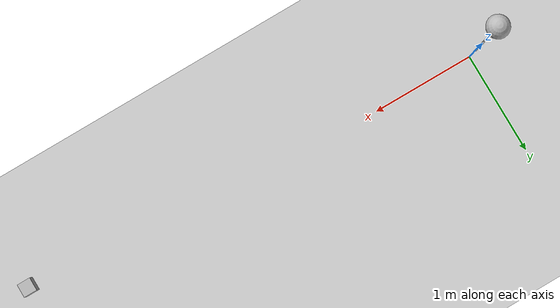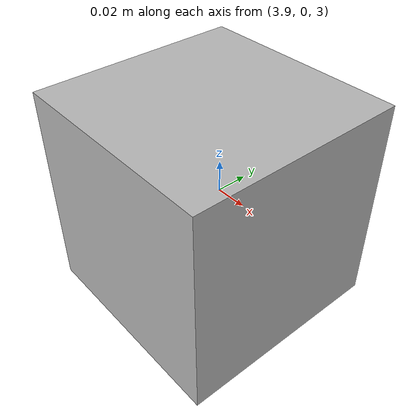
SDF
<?xml version="1.0" ?>
<sdf version="1.6">
  <world name="sensors">
    <physics name="1ms" type="ignored">
      <max_step_size>0.001</max_step_size>
      <real_time_factor>1.0</real_time_factor>
    </physics>
    <plugin
      filename="gz-sim-physics-system"
      name="gz::sim::systems::Physics">
    </plugin>
    <plugin
      filename="gz-sim-air-pressure-system"
      name="gz::sim::systems::AirPressure">
    </plugin>
    <plugin
      filename="gz-sim-altimeter-system"
      name="gz::sim::systems::Altimeter">
    </plugin>
    <plugin
      filename="gz-sim-imu-system"
      name="gz::sim::systems::Imu">
    </plugin>
    <plugin
      filename="gz-sim-uwb-system"
      name="gz::sim::systems::Uwb">
    </plugin>
    <plugin
      filename="gz-sim-magnetometer-system"
      name="gz::sim::systems::Magnetometer">
    </plugin>
    <plugin
      filename="gz-sim-forcetorque-system"
      name="gz::sim::systems::ForceTorque">
    </plugin>
    <plugin
      filename="gz-sim-user-commands-system"
      name="gz::sim::systems::UserCommands">
    </plugin>
    <plugin
      filename="gz-sim-scene-broadcaster-system"
      name="gz::sim::systems::SceneBroadcaster">
    </plugin>

    <light type="directional" name="sun">
      <cast_shadows>true</cast_shadows>
      <pose>0 0 10 0 0 0</pose>
      <diffuse>0.8 0.8 0.8 1</diffuse>
      <specular>0.2 0.2 0.2 1</specular>
      <attenuation>
        <range>1000</range>
        <constant>0.9</constant>
        <linear>0.01</linear>
        <quadratic>0.001</quadratic>
      </attenuation>
      <direction>-0.5 0.1 -0.9</direction>
    </light>

    <model name="ground_plane">
      <static>true</static>
      <link name="link">
        <collision name="collision">
          <geometry>
            <plane>
              <normal>0 0 1</normal>
              <size>100 100</size>
            </plane>
          </geometry>
        </collision>
        <visual name="visual">
          <geometry>
            <plane>
              <normal>0 0 1</normal>
              <size>100 100</size>
            </plane>
          </geometry>
          <material>
            <ambient>0.8 0.8 0.8 1</ambient>
            <diffuse>0.8 0.8 0.8 1</diffuse>
            <specular>0.8 0.8 0.8 1</specular>
          </material>
        </visual>
      </link>
    </model>

    <model name="sensors_box">
      <pose>4 0 3.0 0 0.0 3.14</pose>
      <link name="link">
        <pose>0.05 0.05 0.05 0 0 0</pose>
        <inertial>
          <mass>0.1</mass>
          <inertia>
            <ixx>0.000166667</ixx>
            <iyy>0.000166667</iyy>
            <izz>0.000166667</izz>
          </inertia>
        </inertial>
        <collision name="collision">
          <geometry>
            <box>
              <size>0.1 0.1 0.1</size>
            </box>
          </geometry>
        </collision>
        <visual name="visual">
          <geometry>
            <box>
              <size>0.1 0.1 0.1</size>
            </box>
          </geometry>
        </visual>
        <sensor name="altimeter" type="altimeter">
          <always_on>1</always_on>
          <update_rate>30</update_rate>
          <visualize>true</visualize>
          <topic>altimeter</topic>
          <enable_metrics>true</enable_metrics>
          <altimeter>
            <vertical_position>
              <noise type="gaussian">
                <mean>0.1</mean>
                <stddev>0.2</stddev>
              </noise>
            </vertical_position>
            <vertical_velocity>
              <noise type="gaussian">
                <mean>0.2</mean>
                <stddev>0.1</stddev>
              </noise>
            </vertical_velocity>
          </altimeter>
        </sensor>
        <sensor name="air_pressure" type="air_pressure">
          <always_on>1</always_on>
          <update_rate>30</update_rate>
          <visualize>true</visualize>
          <topic>air_pressure</topic>
          <enable_metrics>true</enable_metrics>
          <air_pressure>
            <reference_altitude>123</reference_altitude>
            <pressure>
              <noise type="gaussian">
                <mean>0.2</mean>
                <stddev>0.1</stddev>
              </noise>
            </pressure>
          </air_pressure>
        </sensor>
        <sensor name="air_speed" type="air_speed">
          <always_on>1</always_on>
          <update_rate>30</update_rate>
          <visualize>true</visualize>
          <topic>air_pressure</topic>
          <enable_metrics>true</enable_metrics>
          <air_speed>
            <pressure>
              <noise type="gaussian">
                <mean>0.2</mean>
                <stddev>0.1</stddev>
              </noise>
            </pressure>
          </air_speed>
        </sensor>
        <sensor name="imu" type="imu">
          <always_on>1</always_on>
          <update_rate>100</update_rate>
          <visualize>true</visualize>
          <topic>imu</topic>
          <enable_metrics>true</enable_metrics>
        </sensor>
        <sensor name="uwb" type="uwb">
          <always_on>1</always_on>
          <update_rate>100</update_rate>
          <visualize>true</visualize>
          <topic>uwb</topic>
          <enable_metrics>true</enable_metrics>
        </sensor>
        <sensor name="magnetometer" type="magnetometer">
          <always_on>1</always_on>
          <update_rate>100</update_rate>
          <visualize>true</visualize>
          <topic>magnetometer</topic>
          <enable_metrics>true</enable_metrics>
          <magnetometer>
            <x>
              <noise type="gaussian">
                <mean>0.0</mean>
                <stddev>0.1</stddev>
              </noise>
            </x>
            <y>
              <noise type="gaussian">
                <mean>0.0</mean>
                <stddev>0.1</stddev>
              </noise>
            </y>
            <z>
              <noise type="gaussian">
                <mean>0.0</mean>
                <stddev>0.1</stddev>
              </noise>
            </z>
          </magnetometer>
        </sensor>
      </link>
    </model>

    <model name="force_torque_demo">
      <link name="base_plate">
        <static>true</static>
      </link>

      <link name="link_1">
        <pose> 0 0 2.0 0 0 0</pose>
        <inertial>
          <inertia>
            <ixx>0.100000</ixx>
            <ixy>0.000000</ixy>
            <ixz>0.000000</ixz>
            <iyy>0.100000</iyy>
            <iyz>0.000000</iyz>
            <izz>0.100000</izz>
          </inertia>
          <mass>10.000000</mass>
        </inertial>
        <visual name="visual_sphere">
          <geometry>
            <sphere>
              <radius>0.100000</radius>
            </sphere>
          </geometry>
        </visual>
        <visual name="visual_cylinder">
          <pose>0 0 -0.75 0 0 0</pose>
          <geometry>
            <cylinder>
              <radius>0.0100000</radius>
              <length>1.5</length>
            </cylinder>
          </geometry>
        </visual>
        <collision name="collision_sphere">
          <geometry>
            <sphere>
              <radius>0.100000</radius>
            </sphere>
          </geometry>
        </collision>
      </link>
      <joint name="joint_00" type="fixed">
        <parent>world</parent>
        <child>base_plate</child>
      </joint>
      <joint name="joint_01" type="revolute">
        <parent>base_plate</parent>
        <child>link_1</child>
        <pose>0 0 -1.5 0 0 0</pose>
        <axis>
          <limit>
            <lower>-1.57079</lower>
            <upper>1.57079</upper>
          </limit>
          <dynamics>
            <damping>0.000000</damping>
            <friction>0.000000</friction>
          </dynamics>
          <xyz>1.000000 0.000000 0.000000</xyz>
        </axis>
        <sensor name="force_torque" type="force_torque">
          <update_rate>10</update_rate>
        </sensor>
      </joint>
    </model>
  </world>
</sdf>
